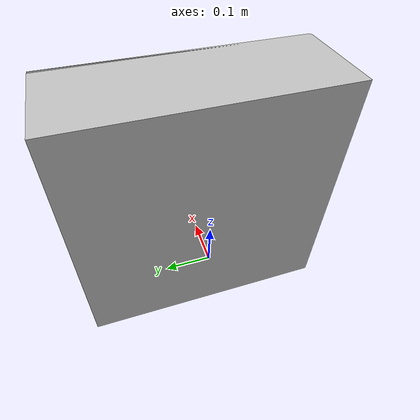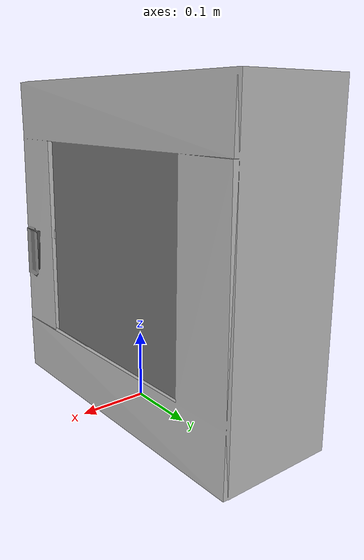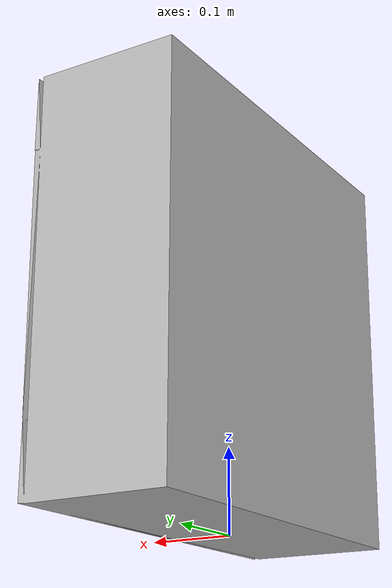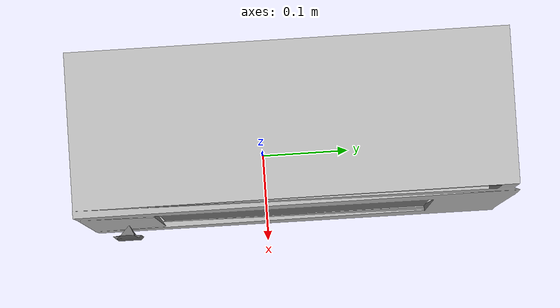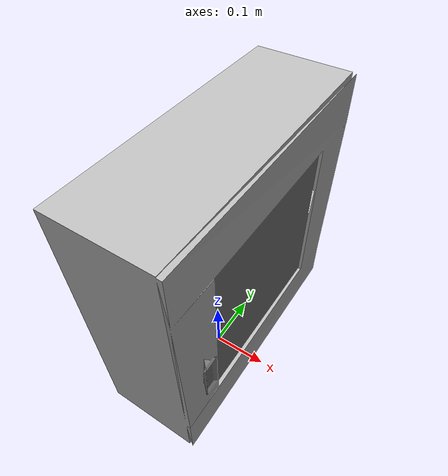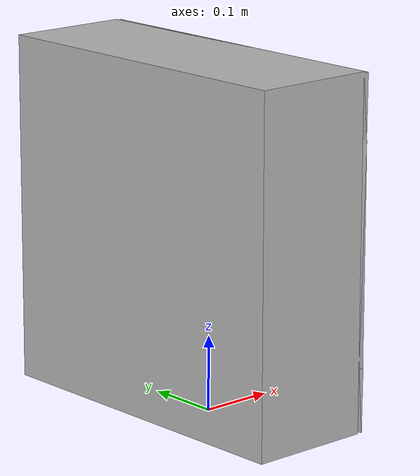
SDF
<?xml version='1.0'?>
<sdf version="1.5">

  <model name="wall_locker">
    <static>true</static>
    <link name="link">

      <inertial>
        <mass>10</mass>
        <inertia>
          <ixx>1.0</ixx>       <!-- for a box: ixx = 0.083 * mass * (y*y + z*z) -->
          <ixy>0.0</ixy>       <!-- for a box: ixy = 0 -->
          <ixz>0.0</ixz>       <!-- for a box: ixz = 0 -->
          <iyy>1.0</iyy>       <!-- for a box: iyy = 0.083 * mass * (x*x + z*z) -->
          <iyz>0.0</iyz>       <!-- for a box: iyz = 0 -->
          <izz>1.0</izz>      <!-- for a box: izz = 0.083 * mass * (x*x + y*y) -->
        </inertia>
      </inertial>

      <collision name="collision">
        <pose>-0.01 0.03 0.232 0 0 0</pose>
        <geometry>
          <box>
            <size>0.17 0.465 0.465</size>
          </box>
        </geometry>
      </collision>

      <visual name="visual">
        <geometry>
          <mesh>
            <uri>model://wall_locker/wall_locker.dae</uri>
          </mesh>
        </geometry>
      </visual>

    </link>
  </model>

</sdf>
